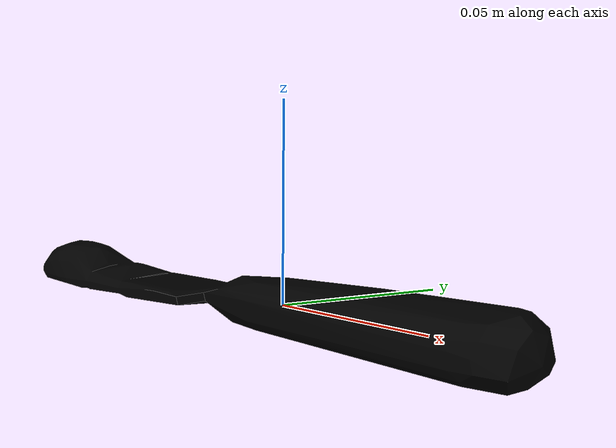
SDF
<?xml version="1.0"?>
<sdf version="1.4">
  <model name="032_knife_textured">
    <pose>0 0 0  0 0 0</pose>
    <link name="body">
      <inertial>
        <mass> 1.0 </mass>
        <pose>0 0 0 0 0 0</pose>
        <inertia>
          <ixx>2.6648442043963255e-05</ixx>
          <ixy>0.0</ixy>
          <ixz>0.0</ixz>
          <iyy>0.0037511715642809507</iyy>
          <iyz>0.0</iyz>
          <izz>0.0037590836242800854</izz>
        </inertia>
      </inertial>
      <visual name="visual">
        <geometry>
          <mesh>
            <uri>model://032_knife_textured/textured.dae</uri>
          </mesh>
        </geometry>
        <pose>-0.008830083609333602 -0.02934965685304941 -0.0018257383849631704 -2.923230222576692 -0.04816944449161608 -0.015742069839542325</pose>
      </visual>
      <collision name="collision">
        <geometry>
          <mesh>
            <uri>model://032_knife_textured/textured.col.dae</uri>
          </mesh>
        </geometry>
        <max_contacts>10</max_contacts>
        <surface>
          <friction>
            <ode>
              <mu>0.8</mu>
              <mu2>0.8</mu2>
              <slip1>0</slip1>
              <slip2>0</slip2>
            </ode>
            <torsional>
              <ode/>
            </torsional>
          </friction>
          <contact>
            <ode>
              <kp>1000000.0</kp>
              <kd>1.0</kd>
              <max_vel>0.0</max_vel>
            </ode>
          </contact>
        </surface>
        <pose>-0.008830083609333602 -0.02934965685304941 -0.0018257383849631704 -2.923230222576692 -0.04816944449161608 -0.015742069839542325</pose>
      </collision>
    </link>
  </model>
</sdf>
